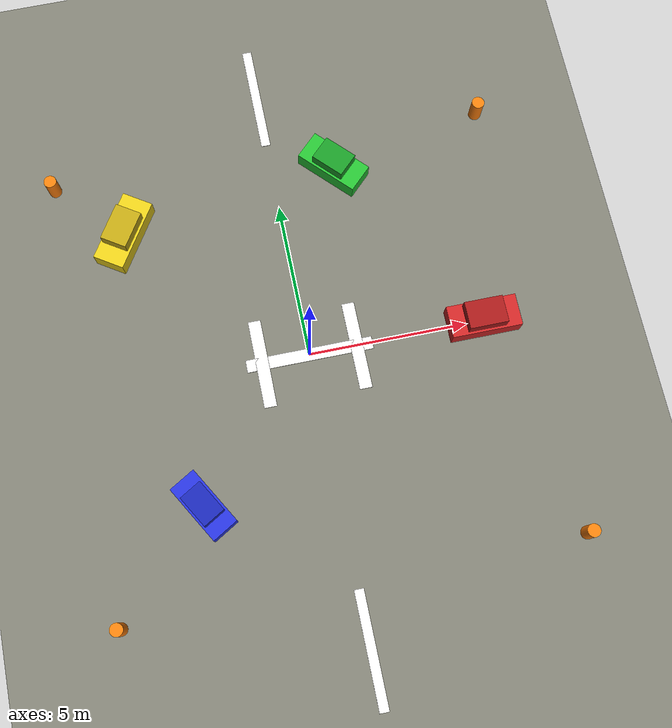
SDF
<?xml version="1.0" encoding="UTF-8"?>
<sdf version="1.9">
  <world name="detection_zone">

    <physics type="ode">
      <max_step_size>0.004</max_step_size>
      <real_time_factor>1.0</real_time_factor>
      <real_time_update_rate>250</real_time_update_rate>
    </physics>
    <gravity>0 0 -9.8</gravity>
    <magnetic_field>6e-06 2.3e-05 -4.2e-05</magnetic_field>
    <atmosphere type="adiabatic"/>

    <spherical_coordinates>
      <surface_model>EARTH_WGS84</surface_model>
      <world_frame_orientation>ENU</world_frame_orientation>
      <latitude_deg>47.397742</latitude_deg>
      <longitude_deg>8.545594</longitude_deg>
      <elevation>0</elevation>
    </spherical_coordinates>

    <scene>
      <grid>false</grid>
      <ambient>0.8 0.8 0.8 1</ambient>
      <background>0.5 0.7 0.9 1</background>
      <shadows>true</shadows>
    </scene>

    <!-- Bright overhead sun -->
    <light name="sun" type="directional">
      <cast_shadows>true</cast_shadows>
      <pose>0 0 200 0 -0 0</pose>
      <diffuse>1 1 1 1</diffuse>
      <specular>0.4 0.4 0.4 1</specular>
      <direction>-0.3 0.1 -0.95</direction>
    </light>

    <!-- Fill light to reduce harsh shadow blacks -->
    <light name="fill_light" type="directional">
      <cast_shadows>false</cast_shadows>
      <pose>0 0 50 0 0 0</pose>
      <diffuse>0.4 0.4 0.4 1</diffuse>
      <specular>0 0 0 1</specular>
      <direction>0.3 -0.1 -0.8</direction>
    </light>

    <!-- ── Ground plane (tarmac grey) ── -->
    <model name="ground_plane">
      <static>true</static>
      <link name="link">
        <collision name="collision">
          <geometry>
            <plane><normal>0 0 1</normal><size>1 1</size></plane>
          </geometry>
        </collision>
        <visual name="visual">
          <geometry>
            <plane><normal>0 0 1</normal><size>500 500</size></plane>
          </geometry>
          <material>
            <ambient>0.45 0.45 0.42 1</ambient>
            <diffuse>0.50 0.50 0.45 1</diffuse>
            <specular>0.02 0.02 0.02 1</specular>
          </material>
        </visual>
      </link>
    </model>

    <!-- ── White lane-line strips (H helipad painted on ground) ── -->
    <!-- Horizontal bar of H -->
    <model name="helipad_hbar">
      <static>true</static>
      <pose>0 0 0.01 0 0 0</pose>
      <link name="link">
        <visual name="v">
          <geometry><box><size>4.0 0.4 0.02</size></box></geometry>
          <material><ambient>0.9 0.9 0.9 1</ambient><diffuse>0.95 0.95 0.95 1</diffuse></material>
        </visual>
        <collision name="c"><geometry><box><size>4.0 0.4 0.02</size></box></geometry></collision>
      </link>
    </model>
    <!-- Left vertical bar of H -->
    <model name="helipad_left">
      <static>true</static>
      <pose>-1.5 0 0.01 0 0 0</pose>
      <link name="link">
        <visual name="v">
          <geometry><box><size>0.4 2.8 0.02</size></box></geometry>
          <material><ambient>0.9 0.9 0.9 1</ambient><diffuse>0.95 0.95 0.95 1</diffuse></material>
        </visual>
        <collision name="c"><geometry><box><size>0.4 2.8 0.02</size></box></geometry></collision>
      </link>
    </model>
    <!-- Right vertical bar of H -->
    <model name="helipad_right">
      <static>true</static>
      <pose>1.5 0 0.01 0 0 0</pose>
      <link name="link">
        <visual name="v">
          <geometry><box><size>0.4 2.8 0.02</size></box></geometry>
          <material><ambient>0.9 0.9 0.9 1</ambient><diffuse>0.95 0.95 0.95 1</diffuse></material>
        </visual>
        <collision name="c"><geometry><box><size>0.4 2.8 0.02</size></box></geometry></collision>
      </link>
    </model>

    <!-- ── Vehicle A — red box (north, 5.5m) ── -->
    <model name="vehicle_A">
      <static>true</static>
      <pose>5.5 0 0.3 0 0 0</pose>
      <link name="link">
        <visual name="body">
          <geometry><box><size>2.2 1.0 0.6</size></box></geometry>
          <material><ambient>0.75 0.1 0.1 1</ambient><diffuse>0.8 0.15 0.15 1</diffuse></material>
        </visual>
        <visual name="cabin">
          <pose>0 0 0.5 0 0 0</pose>
          <geometry><box><size>1.2 0.85 0.4</size></box></geometry>
          <material><ambient>0.6 0.08 0.08 1</ambient><diffuse>0.65 0.1 0.1 1</diffuse></material>
        </visual>
        <collision name="c"><geometry><box><size>2.2 1.0 0.6</size></box></geometry></collision>
      </link>
    </model>

    <!-- ── Vehicle B — blue box (south-west, 4m) ── -->
    <model name="vehicle_B">
      <static>true</static>
      <pose>-4 -4 0.3 0 0 2.1</pose>
      <link name="link">
        <visual name="body">
          <geometry><box><size>2.0 0.9 0.55</size></box></geometry>
          <material><ambient>0.1 0.15 0.75 1</ambient><diffuse>0.15 0.2 0.85 1</diffuse></material>
        </visual>
        <visual name="cabin">
          <pose>0 0 0.45 0 0 0</pose>
          <geometry><box><size>1.1 0.75 0.4</size></box></geometry>
          <material><ambient>0.08 0.1 0.6 1</ambient><diffuse>0.1 0.15 0.7 1</diffuse></material>
        </visual>
        <collision name="c"><geometry><box><size>2.0 0.9 0.55</size></box></geometry></collision>
      </link>
    </model>

    <!-- ── Vehicle C — green box (east, 6m) ── -->
    <model name="vehicle_C">
      <static>true</static>
      <pose>2 6 0.3 0 0 -0.8</pose>
      <link name="link">
        <visual name="body">
          <geometry><box><size>2.1 0.95 0.58</size></box></geometry>
          <material><ambient>0.1 0.65 0.15 1</ambient><diffuse>0.15 0.75 0.2 1</diffuse></material>
        </visual>
        <visual name="cabin">
          <pose>0 0 0.48 0 0 0</pose>
          <geometry><box><size>1.1 0.8 0.38</size></box></geometry>
          <material><ambient>0.08 0.5 0.1 1</ambient><diffuse>0.1 0.6 0.15 1</diffuse></material>
        </visual>
        <collision name="c"><geometry><box><size>2.1 0.95 0.58</size></box></geometry></collision>
      </link>
    </model>

    <!-- ── Vehicle D — yellow box (south-east, 5m) ── -->
    <model name="vehicle_D">
      <static>true</static>
      <pose>-5 5 0.3 0 0 1.0</pose>
      <link name="link">
        <visual name="body">
          <geometry><box><size>2.3 1.0 0.6</size></box></geometry>
          <material><ambient>0.8 0.72 0.05 1</ambient><diffuse>0.9 0.8 0.1 1</diffuse></material>
        </visual>
        <visual name="cabin">
          <pose>0 0 0.5 0 0 0</pose>
          <geometry><box><size>1.2 0.85 0.4</size></box></geometry>
          <material><ambient>0.65 0.58 0.04 1</ambient><diffuse>0.75 0.65 0.08 1</diffuse></material>
        </visual>
        <collision name="c"><geometry><box><size>2.3 1.0 0.6</size></box></geometry></collision>
      </link>
    </model>

    <!-- ── Orange traffic-cone cylinders at corners ── -->
    <model name="cone_NE">
      <static>true</static>
      <pose>7 7 0.4 0 0 0</pose>
      <link name="link">
        <visual name="v">
          <geometry><cylinder><radius>0.2</radius><length>0.8</length></cylinder></geometry>
          <material><ambient>0.95 0.45 0.0 1</ambient><diffuse>1.0 0.5 0.05 1</diffuse></material>
        </visual>
        <collision name="c"><geometry><cylinder><radius>0.2</radius><length>0.8</length></cylinder></geometry></collision>
      </link>
    </model>

    <model name="cone_SW">
      <static>true</static>
      <pose>-7 -7 0.4 0 0 0</pose>
      <link name="link">
        <visual name="v">
          <geometry><cylinder><radius>0.2</radius><length>0.8</length></cylinder></geometry>
          <material><ambient>0.95 0.45 0.0 1</ambient><diffuse>1.0 0.5 0.05 1</diffuse></material>
        </visual>
        <collision name="c"><geometry><cylinder><radius>0.2</radius><length>0.8</length></cylinder></geometry></collision>
      </link>
    </model>

    <model name="cone_NW">
      <static>true</static>
      <pose>-7 7 0.4 0 0 0</pose>
      <link name="link">
        <visual name="v">
          <geometry><cylinder><radius>0.2</radius><length>0.8</length></cylinder></geometry>
          <material><ambient>0.95 0.45 0.0 1</ambient><diffuse>1.0 0.5 0.05 1</diffuse></material>
        </visual>
        <collision name="c"><geometry><cylinder><radius>0.2</radius><length>0.8</length></cylinder></geometry></collision>
      </link>
    </model>

    <model name="cone_SE">
      <static>true</static>
      <pose>7 -7 0.4 0 0 0</pose>
      <link name="link">
        <visual name="v">
          <geometry><cylinder><radius>0.2</radius><length>0.8</length></cylinder></geometry>
          <material><ambient>0.95 0.45 0.0 1</ambient><diffuse>1.0 0.5 0.05 1</diffuse></material>
        </visual>
        <collision name="c"><geometry><cylinder><radius>0.2</radius><length>0.8</length></cylinder></geometry></collision>
      </link>
    </model>

    <!-- ── White lane lines across the pad ── -->
    <model name="lane_line_N">
      <static>true</static>
      <pose>0 9 0.01 0 0 0</pose>
      <link name="link">
        <visual name="v">
          <geometry><box><size>0.3 3.5 0.02</size></box></geometry>
          <material><ambient>0.9 0.9 0.9 1</ambient><diffuse>0.95 0.95 0.95 1</diffuse></material>
        </visual>
      </link>
    </model>

    <model name="lane_line_S">
      <static>true</static>
      <pose>0 -9 0.01 0 0 0</pose>
      <link name="link">
        <visual name="v">
          <geometry><box><size>0.3 3.5 0.02</size></box></geometry>
          <material><ambient>0.9 0.9 0.9 1</ambient><diffuse>0.95 0.95 0.95 1</diffuse></material>
        </visual>
      </link>
    </model>

  </world>
</sdf>
